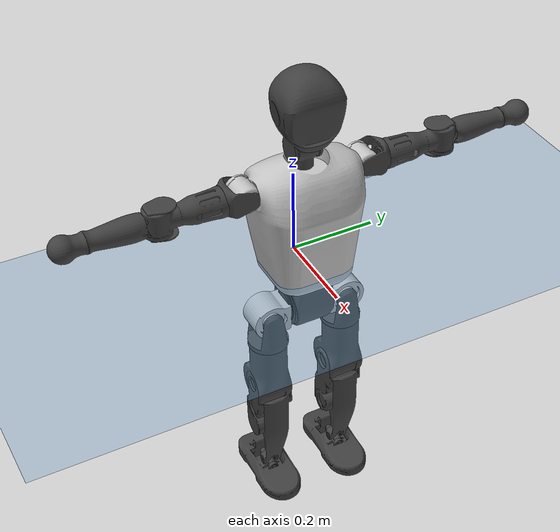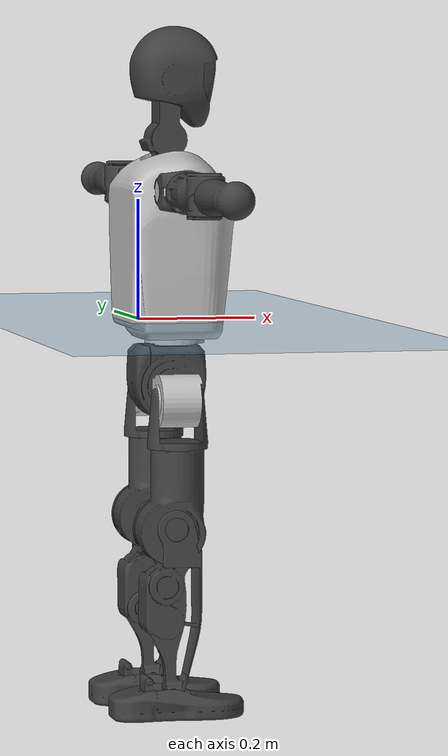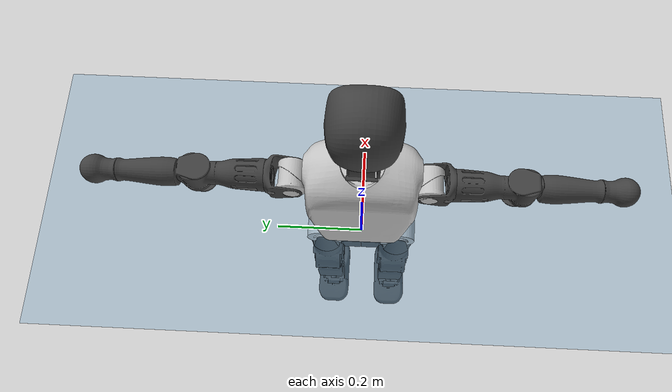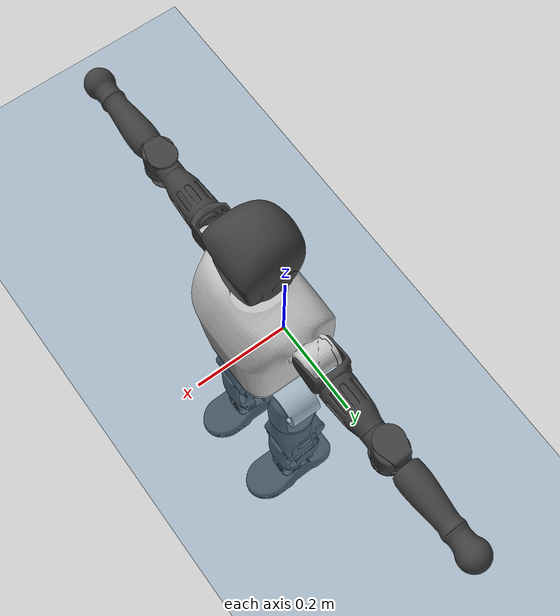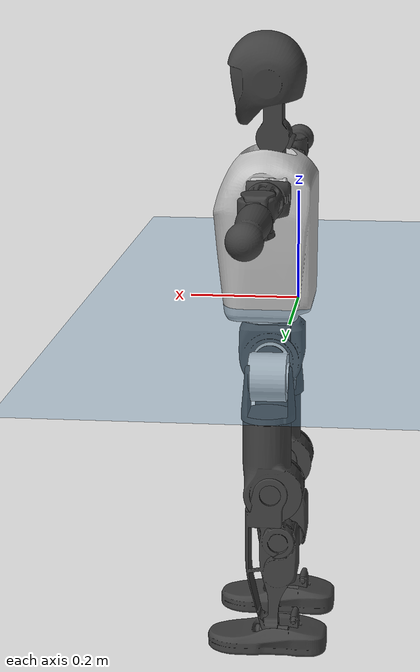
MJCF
<mujoco model="T1">
  <compiler angle="radian" assetdir="assets" balanceinertia="true" inertiafromgeom="false"/>

  <option timestep="0.005" density="1.2" viscosity="2e-05"/>

  <size nkey="1"/>

  <visual>
    <quality shadowsize="8192"/>
    <map shadowclip="0.5"/>
  </visual>

  <default>
    <default class="/">
      <joint armature="0.01" damping="0.01" frictionloss="0.1"/>
      <geom contype="0" conaffinity="0" group="1" solref="-1000 -80"/>
      <site size="0.01 0.005 0.005" group="5"/>
      <general forcelimited="true" biastype="affine" gainprm="25" biasprm="0 -25 -0.6"/>
      <default class="t1">
        <geom rgba="0.25 0.25 0.25 1"/>
        <default class="visual">
          <geom type="mesh" group="2"/>
        </default>
        <default class="collision">
          <geom group="3"/>
        </default>
        <default class="foot">
          <geom size="0.1115 0.05 0.015" type="box" condim="6" group="4" priority="1" solimp="0.015 1 0.015"/>
        </default>
        <default class="reward_collision_sphere">
          <geom group="5" rgba="1 0 0 1"/>
        </default>
      </default>
    </default>
  </default>

  <asset>
    <texture type="skybox" colorspace="auto" name="//unnamed_texture_0" builtin="gradient" rgb1="0.95 0.95 0.95" rgb2="0.95 0.95 0.95" width="100" height="600"/>
    <texture type="2d" colorspace="auto" name="texplane" builtin="checker" rgb1="0.345 0.575 0.748" rgb2="0.345 0.575 0.748" markrgb="1 1 1" width="512" height="512"/>
    <material name="MatPlane" class="/" texture="texplane" texuniform="true" texrepeat="2 2" specular="0.9"/>
    <mesh name="Trunk" class="/" file="Trunk.stl"/>
    <mesh name="H1" class="/" file="H1.stl"/>
    <mesh name="H2" class="/" file="H2.stl"/>
    <mesh name="AL1" class="/" file="AL1.stl"/>
    <mesh name="AL2" class="/" file="AL2.stl"/>
    <mesh name="AL3" class="/" file="AL3.stl"/>
    <mesh name="left_hand_link" class="/" file="left_hand_link.stl"/>
    <mesh name="AR1" class="/" file="AR1.stl"/>
    <mesh name="AR2" class="/" file="AR2.stl"/>
    <mesh name="AR3" class="/" file="AR3.stl"/>
    <mesh name="right_hand_link" class="/" file="right_hand_link.stl"/>
    <mesh name="Waist" class="/" file="Waist.stl"/>
    <mesh name="Hip_Pitch_Left" class="/" file="Hip_Pitch_Left.stl"/>
    <mesh name="Hip_Roll_Left" class="/" file="Hip_Roll_Left.stl"/>
    <mesh name="Hip_Yaw_Left" class="/" file="Hip_Yaw_Left.stl"/>
    <mesh name="Shank_Left" class="/" file="Shank_Left.stl"/>
    <mesh name="Ankle_Cross_Left" class="/" file="Ankle_Cross_Left.stl"/>
    <mesh name="left_foot_link" class="/" file="left_foot_link.stl"/>
    <mesh name="Hip_Pitch_Right" class="/" file="Hip_Pitch_Right.stl"/>
    <mesh name="Hip_Roll_Right" class="/" file="Hip_Roll_Right.stl"/>
    <mesh name="Hip_Yaw_Right" class="/" file="Hip_Yaw_Right.stl"/>
    <mesh name="Shank_Right" class="/" file="Shank_Right.stl"/>
    <mesh name="Ankle_Cross_Right" class="/" file="Ankle_Cross_Right.stl"/>
    <mesh name="right_foot_link" class="/" file="right_foot_link.stl"/>
  </asset>

  <worldbody>
    <geom name="floor" class="/" size="100 100 0.125" type="plane" group="0" material="MatPlane"/>
    <light name="toplight_shadow" class="/" pos="0 0 5" dir="0.0990148 0.0990148 -0.990148" type="directional" ambient="0.04 0.04 0.04" diffuse="0.55 0.55 0.55" specular="0.12 0.12 0.12"/>
    <light name="toplight_fill" class="/" pos="0 0 5" dir="0.0990148 0.0990148 -0.990148" type="directional" castshadow="false" ambient="0.04 0.04 0.04" diffuse="0.3 0.3 0.3" specular="0.08 0.08 0.08"/>
    <body name="trunk" childclass="t1" pos="-0.000376604 0.00106879 0.00263035" quat="1 -0.000253843 -0.000326207 -6.36612e-05">
      <inertial pos="0.0379684 -0.00303281 0.103743" quat="0.999962 -0.000176302 -0.00874178 -0.000204706" mass="7.58514" diaginertia="0.0212292 0.0446755 0.0495285"/>
      <joint name="//unnamed_joint_0" type="free" armature="0" damping="0" frictionloss="0"/>
      <geom name="//unnamed_geom_1" class="visual" rgba="0.76 0.76 0.76 1" mesh="Trunk"/>
      <geom name="//unnamed_geom_2" class="collision" size="0.0654499 0.0872666 0.1309" pos="0.0445324 0 0.117449" type="box"/>
      <geom name="//unnamed_geom_3" class="reward_collision_sphere" size="0.100357" pos="0.0445324 0 0.0978742"/>
      <geom name="//unnamed_geom_4" class="reward_collision_sphere" size="0.01309" pos="0.0445324 0.0762492 0"/>
      <geom name="//unnamed_geom_5" class="reward_collision_sphere" size="0.01309" pos="0.0445324 -0.0762492 0"/>
      <geom name="//unnamed_geom_6" class="reward_collision_sphere" size="0.01309" pos="0.0445324 0.0959843 0.176174"/>
      <geom name="//unnamed_geom_7" class="reward_collision_sphere" size="0.01309" pos="0.0445324 -0.0959843 0.176174"/>
      <site name="imu" pos="-0.0121112 0.0114894 -0.0124466" size="0.00872666"/>
      <camera name="track" pos="0 -1.7941 0" quat="0.707107 0.707107 0 0" mode="trackcom"/>
      <camera name="ego_camera" pos="0.0905492 0 0.411072" quat="-0.5 -0.5 0.5 0.5"/>
      <body name="H1" pos="0.0455546 0.000360955 0.237058" quat="0.999999 -0.000891656 -0.000940287 -0.000212509">
        <inertial pos="-0.00124539 -0.00229412 0.0567221" quat="0.762869 -0.00972592 -0.00174266 0.646477" mass="0.313075" diaginertia="5.42969e-05 0.000134645 0.000139231"/>
        <joint name="AAHead_yaw" pos="0 0 0" axis="0.00675161 -0.00879472 0.999939" range="-1.59134 1.56385" armature="0.00990849" damping="0" frictionloss="0.0895588"/>
        <geom name="//unnamed_geom_8" class="visual" mesh="H1"/>
        <body name="H2" pos="0.0014853 -0.00264498 0.0603537" quat="1 -4.90421e-05 -0.000426111 -0.000818549">
          <inertial pos="0.0047856 -0.000302709 0.0970031" quat="0.988568 0.103009 -0.0779566 -0.0777534" mass="0.42221" diaginertia="0.000461174 0.00112459 0.00159513"/>
          <joint name="Head_pitch" pos="0 0 0" axis="0.0128708 -0.999902 -0.00542942" stiffness="0.00806932" range="-1.2036 0.303907" armature="0.00922255" damping="0" frictionloss="0.091914"/>
          <geom name="//unnamed_geom_9" class="visual" mesh="H2"/>
          <geom name="//unnamed_geom_10" class="collision" size="0.0698133" pos="0.00742206 0 0.107662"/>
          <geom name="//unnamed_geom_11" class="reward_collision_sphere" size="0.0785399" pos="0.0148441 0 0.0978742"/>
        </body>
      </body>
      <body name="AL1" pos="0.0429688 0.0978098 0.21496" quat="0.999999 -2.26679e-06 -0.000678726 0.000968206">
        <inertial pos="-0.000735649 0.0430247 0.000105598" quat="0.505735 0.494506 -0.507334 0.492248" mass="0.348813" diaginertia="0.000316574 0.000741942 0.000259155"/>
        <joint name="Left_Shoulder_Pitch" pos="0 0 0" axis="-0.00465077 0.999984 0.00319341" range="-3.2799 1.23906" armature="0.00864053" damping="0.00662927" frictionloss="0.0763139"/>
        <geom name="//unnamed_geom_12" class="visual" rgba="0.76 0.76 0.76 1" mesh="AL1"/>
        <body name="AL2" pos="-0.00152267 0.0447377 5.33448e-05" quat="1 -2.62777e-06 -3.2096e-06 -9.11446e-05">
          <inertial pos="0.00171221 0.0343724 0.00247873" quat="0.487019 0.51213 -0.488884 0.511398" mass="0.113604" diaginertia="9.3018e-05 0.000200395 0.000167949"/>
          <joint name="Left_Shoulder_Roll" pos="0 0 0" axis="-0.999992 -0.00341806 0.00183769" stiffness="0.00781957" range="-1.5213 1.79044" armature="0.00777837" damping="0" frictionloss="0.0871506"/>
          <geom name="//unnamed_geom_13" class="visual" mesh="AL2"/>
          <body name="AL3" pos="0.00348778 0.0558337 -0.0016493" quat="1 -3.29538e-05 0.000744377 5.95849e-06">
            <inertial pos="0.00231727 0.0763976 -0.000188419" quat="0.701049 0.713095 0.00498921 -0.000904754" mass="0.682724" diaginertia="0.00278257 0.0076246 0.000539359"/>
            <joint name="Left_Elbow_Pitch" pos="0 0 0" axis="-0.00518216 -0.999948 -0.00873004" range="-2.22462 2.32643" armature="0.00788951" damping="0.0109371" frictionloss="0.0753321"/>
            <geom name="//unnamed_geom_14" class="visual" mesh="AL3"/>
            <geom name="//unnamed_geom_15" class="collision" size="0.02618 0.0654499" pos="0 0.0448525 0" quat="0.707105 0.707108 0 0" type="cylinder"/>
            <geom name="//unnamed_geom_16" class="reward_collision_sphere" size="0.031416"/>
            <body name="left_hand_link" pos="-0.00222888 0.13507 0.00272633" quat="1 0.000480271 -3.98822e-05 0.000600132">
              <inertial pos="0.000524919 0.0974153 0.00236004" quat="0.707962 0.70625 0.000161909 0.000508728" mass="0.217914" diaginertia="0.00191566 0.00488953 0.000194707"/>
              <joint name="Left_Elbow_Yaw" pos="0 0 0" axis="0.00825267 -0.000250012 0.999966" range="-2.47559 -0.00916102" armature="0.00992145" damping="0.00889371" frictionloss="0.0772436"/>
              <geom name="//unnamed_geom_17" class="visual" mesh="left_hand_link"/>
              <geom name="//unnamed_geom_18" class="collision" size="0.02618 0.0763583" pos="0 0.116616 0" quat="0.707105 0.707108 0 0" type="cylinder"/>
              <geom name="//unnamed_geom_19" class="reward_collision_sphere" size="0.0436333"/>
              <geom name="//unnamed_geom_20" class="reward_collision_sphere" size="0.0305433" pos="0 0.0986755 0"/>
              <geom name="//unnamed_geom_21" class="reward_collision_sphere" size="0.0305433" pos="0 0.192866 0"/>
            </body>
          </body>
        </body>
      </body>
      <body name="AR1" pos="0.0396086 -0.0915822 0.214411" quat="1 -0.000511116 1.13802e-05 -0.000273808">
        <inertial pos="-0.00326004 -0.0399139 0.00260447" quat="0.499594 0.492353 -0.503899 0.504065" mass="0.360523" diaginertia="0.000300538 0.000732742 0.000270546"/>
        <joint name="Right_Shoulder_Pitch" pos="0 0 0" axis="0.000150709 -0.999999 0.00159035" stiffness="0.00465724" range="-1.22962 3.30338" armature="0.0087504" damping="0.0112214" frictionloss="0.0753678"/>
        <geom name="//unnamed_geom_22" class="visual" rgba="0.76 0.76 0.76 1" mesh="AR1"/>
        <body name="AR2" pos="-0.000273863 -0.0413195 0.000559688" quat="1 6.02852e-07 -3.48681e-06 -5.1021e-06">
          <inertial pos="0.003297 -0.0351265 0.002506" quat="0.511591 0.488111 -0.511649 0.488095" mass="0.107304" diaginertia="8.9468e-05 0.000207376 0.000163009"/>
          <joint name="Right_Shoulder_Roll" pos="0 0 0" axis="-0.999862 -0.00010205 0.0166374" range="-1.697 1.61692" armature="0.00762775" damping="0.0185224" frictionloss="0.0828053"/>
          <geom name="//unnamed_geom_23" class="visual" mesh="AR2"/>
          <body name="AR3" pos="0.000761454 -0.0535501 -0.0021607" quat="1 -6.23525e-05 9.96824e-05 4.28774e-05">
            <inertial pos="-0.000365093 -0.0791427 0.00285248" quat="0.707116 0.706963 -0.0137856 0.000641695" mass="0.677151" diaginertia="0.00297668 0.00720624 0.000579701"/>
            <joint name="Right_Elbow_Pitch" pos="0 0 0" axis="-0.00323042 0.999961 -0.00821829" range="-2.22275 2.21447" armature="0.00876828" damping="0.0215215" frictionloss="0.0881503"/>
            <geom name="//unnamed_geom_24" class="visual" mesh="AR3"/>
            <geom name="//unnamed_geom_25" class="collision" size="0.02618 0.0654499" pos="0 -0.0448525 0" quat="0.707105 0.707108 0 0" type="cylinder"/>
            <geom name="//unnamed_geom_26" class="reward_collision_sphere" size="0.031416"/>
            <body name="right_hand_link" pos="0.000483914 -0.132293 -0.000499015" quat="1 3.97873e-06 -0.000694324 0.000450631">
              <inertial pos="0.000215663 -0.0972974 -0.0020129" quat="0.70799 0.70621 0.00347641 0.00247124" mass="0.214173" diaginertia="0.00181709 0.00470037 0.00018529"/>
              <joint name="Right_Elbow_Yaw" pos="0 0 0" axis="-0.000441874 0.00147791 0.999999" stiffness="0.00246984" range="-0.0216366 2.44653" armature="0.0081614" damping="0" frictionloss="0.0987871"/>
              <geom name="//unnamed_geom_27" class="visual" mesh="right_hand_link"/>
              <geom name="//unnamed_geom_28" class="collision" size="0.02618 0.0763583" pos="0 -0.116616 0" quat="0.707105 0.707108 0 0" type="cylinder"/>
              <geom name="//unnamed_geom_29" class="reward_collision_sphere" size="0.0436333"/>
              <geom name="//unnamed_geom_30" class="reward_collision_sphere" size="0.0305433" pos="0 -0.0986755 0"/>
              <geom name="//unnamed_geom_31" class="reward_collision_sphere" size="0.0305433" pos="0 -0.192866 0"/>
            </body>
          </body>
        </body>
      </body>
      <body name="Waist" pos="0.0478983 -0.000309709 -0.1122" quat="1 0.000137327 0.00037041 0.00041191">
        <inertial pos="-0.000392667 0.0019338 0.00696839" quat="0.983974 -0.00210376 -0.178298 -0.00115003" mass="1.70033" diaginertia="0.00116812 0.00306559 0.00432567"/>
        <joint name="Waist" pos="0 0 0" axis="0.00967152 0.000261991 0.999953" stiffness="0.00766351" range="-1.56128 1.56092" armature="0.00795922" damping="0.0229604" frictionloss="0.084925"/>
        <geom name="//unnamed_geom_32" class="visual" mesh="Waist"/>
        <body name="Hip_Pitch_Left" pos="-0.00145041 0.0971084 0.00234803" quat="0.999999 0.000835218 0.000632557 -8.06882e-05">
          <inertial pos="-0.00227237 -0.00441308 -0.0175619" quat="0.975139 0.221114 0.0144224 0.00209137" mass="0.673414" diaginertia="0.000396519 0.000826741 0.00112612"/>
          <joint name="Left_Hip_Pitch" pos="0 0 0" axis="0.00214335 0.999991 -0.00361338" range="-1.79816 1.57154" armature="0.00738148" damping="0.0147738" frictionloss="0.0970955"/>
          <geom name="//unnamed_geom_33" class="visual" rgba="0.76 0.76 0.76 1" mesh="Hip_Pitch_Left"/>
          <body name="Hip_Roll_Left" pos="0.00291478 -0.00241483 -0.0217736" quat="1 6.79912e-05 -0.000375842 0.000310178">
            <inertial pos="0.00334917 -0.00178027 -0.0549712" quat="0.709075 -0.00347592 -0.00913714 0.705066" mass="0.24761" diaginertia="0.000396673 0.000872393 0.000459273"/>
            <joint name="Left_Hip_Roll" pos="0 0 0" axis="-1 5.4727e-05 0.000785165" range="-1.57147 0.205303" armature="0.00978528" damping="0.0220453" frictionloss="0.0882361"/>
            <geom name="//unnamed_geom_34" class="visual" mesh="Hip_Roll_Left"/>
            <geom name="//unnamed_geom_35" class="reward_collision_sphere" size="0.0479966"/>
            <body name="Hip_Yaw_Left" pos="0.000149732 0.00162437 -0.0785675" quat="1 0.000209392 0.000368608 4.71279e-06">
              <inertial pos="-0.00548446 0.00135485 -0.0848552" quat="0.696658 -0.033864 -0.0315318 0.71591" mass="1.4778" diaginertia="0.00594545 0.0150773 0.00236106"/>
              <joint name="Left_Hip_Yaw" pos="0 0 0" axis="0.000552023 -0.000450756 -1" stiffness="0.00394709" range="-0.992882 1.00388" armature="0.00874382" damping="0.0001835" frictionloss="0.098622"/>
              <geom name="//unnamed_geom_36" class="visual" mesh="Hip_Yaw_Left"/>
              <geom name="//unnamed_geom_37" class="collision" size="0.0436333 0.0698133" type="cylinder"/>
              <body name="Shank_Left" pos="-0.00919896 -0.00199066 -0.134149" quat="0.999999 0.00121998 0.000812403 0.00014983">
                <inertial pos="-0.00386695 -0.0019658 -0.120556" quat="0.998249 -0.00612636 -0.0196815 0.055449" mass="1.16938" diaginertia="0.00788987 0.0207355 0.00168257"/>
                <joint name="Left_Knee_Pitch" pos="0 0 0" axis="-0.00684941 0.999903 -0.0121219" range="-0.0103544 2.28514" armature="0.0100381" damping="0" frictionloss="0.08685"/>
                <geom name="//unnamed_geom_38" class="visual" mesh="Shank_Left"/>
                <geom name="//unnamed_geom_39" class="collision" size="0.0436333 0.0654499" pos="0 0 -0.117449" type="cylinder"/>
                <geom name="//unnamed_geom_40" class="reward_collision_sphere" size="0.0567233"/>
                <body name="Ankle_Cross_Left" pos="0.00203486 -0.0031876 -0.274015" quat="1 -0.000536 -0.000631375 -0.000321285">
                  <inertial pos="-0.00160125 -0.000388916 -0.00745797" quat="0.441283 0.56207 0.547382 0.435567" mass="0.0468878" diaginertia="6.73862e-06 1.48279e-05 1.01416e-05"/>
                  <joint name="Left_Ankle_Pitch" pos="0 0 0" axis="0.00192871 0.999998 0.000736973" stiffness="0.0090428" range="-0.914589 0.397334" armature="0.00983625" damping="0.00268943" frictionloss="0.0976984"/>
                  <geom name="//unnamed_geom_41" class="visual" mesh="Ankle_Cross_Left"/>
                  <body name="left_foot_link" pos="-0.00283927 -0.00193206 -0.01454" quat="0.999999 0.000474531 0.0008679 0.000627127">
                    <inertial pos="-0.000105028 -0.000272056 -0.00978102" quat="-0.011564 0.626212 0.00389756 0.779557" mass="0.466535" diaginertia="0.000607647 0.00141304 0.00205082"/>
                    <joint name="Left_Ankle_Roll" pos="0 0 0" axis="-0.99993 0.00816678 -0.00861493" stiffness="0.0079653" range="-0.434305 0.484203" armature="0.00876141" damping="0.00956599" frictionloss="0.0941821"/>
                    <geom name="//unnamed_geom_42" class="visual" mesh="left_foot_link"/>
                    <geom name="left_foot" class="foot" size="0.102376 0.0406716 0.0138172" pos="0.00742206 0 -0.0146811"/>
                    <geom name="//unnamed_geom_44" class="reward_collision_sphere" size="0.0453786" pos="0.00742206 0 -0.0146811"/>
                    <geom name="//unnamed_geom_45" class="reward_collision_sphere" size="0.02618" pos="0.0705096 -0.0206321 -0.0146811"/>
                    <geom name="//unnamed_geom_46" class="reward_collision_sphere" size="0.02618" pos="-0.0519544 -0.0206321 -0.0146811"/>
                    <site name="left_foot" class="foot" pos="0.00742206 0 -0.0146811" size="0.00872666"/>
                  </body>
                </body>
              </body>
            </body>
          </body>
        </body>
        <body name="Hip_Pitch_Right" pos="-0.00116479 -0.095213 -0.000638349" quat="1 0.000566015 0.000553597 9.10064e-05">
          <inertial pos="-0.000702974 0.00679748 -0.0191726" quat="0.975776 -0.218454 0.0108838 -0.00454266" mass="0.651819" diaginertia="0.000395619 0.000849188 0.00108439"/>
          <joint name="Right_Hip_Pitch" pos="0 0 0" axis="-0.00293865 -0.999991 0.00313135" range="-1.58063 1.75301" armature="0.00917285" damping="0.00917478" frictionloss="0.0896112"/>
          <geom name="//unnamed_geom_47" class="visual" rgba="0.76 0.76 0.76 1" mesh="Hip_Pitch_Right"/>
          <body name="Hip_Roll_Right" pos="0.00222594 -4.21328e-05 -0.0217573" quat="1 3.29809e-05 0.000148021 4.41326e-05">
            <inertial pos="0.00181822 0.00212589 -0.0523673" quat="0.710044 -0.0191458 -0.00422856 0.703884" mass="0.245556" diaginertia="0.000389759 0.000872006 0.000444169"/>
            <joint name="Right_Hip_Roll" pos="0 0 0" axis="-0.999966 0.00820548 0.000300254" stiffness="0.00847296" range="-0.181594 1.56668" armature="0.00763988" damping="0.00797365" frictionloss="0.0891813"/>
            <geom name="//unnamed_geom_48" class="visual" mesh="Hip_Roll_Right"/>
            <geom name="//unnamed_geom_49" class="reward_collision_sphere" size="0.0479966"/>
            <body name="Hip_Yaw_Right" pos="-0.00266408 0.00124667 -0.0798996" quat="1 -0.000505712 -0.000163282 0.000200372">
              <inertial pos="-0.00807834 -0.00013547 -0.089442" quat="0.719795 -0.0263012 -0.0440294 0.692289" mass="1.47819" diaginertia="0.00574651 0.0143811 0.0022769"/>
              <joint name="Right_Hip_Yaw" pos="0 0 0" axis="1.61261e-05 6.82069e-05 -1" range="-0.950036 0.955296" armature="0.00833111" damping="0.00221295" frictionloss="0.0880388"/>
              <geom name="//unnamed_geom_50" class="visual" mesh="Hip_Yaw_Right"/>
              <geom name="//unnamed_geom_51" class="collision" size="0.0436333 0.0698133" type="cylinder"/>
              <body name="Shank_Right" pos="-0.009256 0.00201391 -0.128183" quat="1 -0.000192177 -5.17736e-05 -4.00251e-05">
                <inertial pos="-0.00260514 -0.000583625 -0.121628" quat="0.99964 -0.000180034 -0.021003 -0.0167135" mass="1.10872" diaginertia="0.0076302 0.0202656 0.00171042"/>
                <joint name="Right_Knee_Pitch" pos="0 0 0" axis="-0.00613594 -0.999981 -0.000682554" range="-2.34331 -0.0186511" armature="0.00975295" damping="0" frictionloss="0.0995762"/>
                <geom name="//unnamed_geom_52" class="visual" mesh="Shank_Right"/>
                <geom name="//unnamed_geom_53" class="collision" size="0.0436333 0.0654499" pos="0 0 -0.117449" type="cylinder"/>
                <geom name="//unnamed_geom_54" class="reward_collision_sphere" size="0.0567233"/>
                <body name="Ankle_Cross_Right" pos="-0.00170948 -0.0027763 -0.273184" quat="0.999999 -0.000934481 0.000790684 0.000154633">
                  <inertial pos="-0.00210585 -0.000104133 -0.00677734" quat="0.442817 0.550643 0.550735 0.444293" mass="0.0482038" diaginertia="6.27314e-06 1.4789e-05 1.00218e-05"/>
                  <joint name="Right_Ankle_Pitch" pos="0 0 0" axis="-0.00138739 -0.999999 -0.000413052" range="-0.387793 0.913643" armature="0.00902135" damping="0.0215344" frictionloss="0.0865296"/>
                  <geom name="//unnamed_geom_55" class="visual" mesh="Ankle_Cross_Right"/>
                  <body name="right_foot_link" pos="0.000243194 -0.00129036 -0.0137664" quat="0.999999 0.000109969 -0.0010288 0.000964173">
                    <inertial pos="-0.00290144 0.000711908 -0.00869462" quat="0.000713449 0.621338 0.00142219 0.783541" mass="0.455449" diaginertia="0.000590943 0.00134255 0.00195045"/>
                    <joint name="Right_Ankle_Roll" pos="0 0 0" axis="-0.999997 -0.00142649 -0.00195029" stiffness="0.00617389" range="-0.393158 0.401238" armature="0.00890248" damping="0.00267643" frictionloss="0.0852541"/>
                    <geom name="//unnamed_geom_56" class="visual" mesh="right_foot_link"/>
                    <geom name="right_foot" class="foot" size="0.0983369 0.0423436 0.0136265" pos="0.00742206 0 -0.0146811"/>
                    <geom name="//unnamed_geom_58" class="reward_collision_sphere" size="0.0349066"/>
                    <geom name="//unnamed_geom_59" class="reward_collision_sphere" size="0.02618" pos="0.00742206 0 -0.0146811"/>
                    <geom name="//unnamed_geom_60" class="reward_collision_sphere" size="0.02618" pos="0.0705096 0.0206321 -0.0146811"/>
                    <geom name="//unnamed_geom_61" class="reward_collision_sphere" size="0.02618" pos="-0.0519544 0.0206321 -0.0146811"/>
                    <site name="right_foot" class="foot" pos="0.00742206 0 -0.0146811" size="0.00872666"/>
                  </body>
                </body>
              </body>
            </body>
          </body>
        </body>
      </body>
    </body>
  </worldbody>

  <contact>
    <pair class="/" geom1="floor" geom2="left_foot" name="//unnamed_contact_0"/>
    <pair class="/" geom1="floor" geom2="right_foot" name="//unnamed_contact_1"/>
  </contact>

  <actuator>
    <general name="AAHead_yaw" class="/" joint="AAHead_yaw" forcerange="-6.03986 6.03986" gainprm="20.4965" biasprm="0 -20.4965 -0.485973"/>
    <general name="Head_pitch" class="/" joint="Head_pitch" forcerange="-6.03425 6.03425" gainprm="20.4965" biasprm="0 -20.4965 -0.485973"/>
    <general name="Left_Shoulder_Pitch" class="/" joint="Left_Shoulder_Pitch" forcerange="-15.0681 15.0681" gainprm="20.4965" biasprm="0 -20.4965 -0.485973"/>
    <general name="Left_Shoulder_Roll" class="/" joint="Left_Shoulder_Roll" forcerange="-14.3876 14.3876" gainprm="20.4965" biasprm="0 -20.4965 -0.485973"/>
    <general name="Left_Elbow_Pitch" class="/" joint="Left_Elbow_Pitch" forcerange="-14.4204 14.4204" gainprm="20.4965" biasprm="0 -20.4965 -0.485973"/>
    <general name="Left_Elbow_Yaw" class="/" joint="Left_Elbow_Yaw" forcerange="-17.3342 17.3342" gainprm="20.4965" biasprm="0 -20.4965 -0.485973"/>
    <general name="Right_Shoulder_Pitch" class="/" joint="Right_Shoulder_Pitch" forcerange="-17.2697 17.2697" gainprm="20.4965" biasprm="0 -20.4965 -0.485973"/>
    <general name="Right_Shoulder_Roll" class="/" joint="Right_Shoulder_Roll" forcerange="-14.9925 14.9925" gainprm="20.4965" biasprm="0 -20.4965 -0.485973"/>
    <general name="Right_Elbow_Pitch" class="/" joint="Right_Elbow_Pitch" forcerange="-15.6599 15.6599" gainprm="20.4965" biasprm="0 -20.4965 -0.485973"/>
    <general name="Right_Elbow_Yaw" class="/" joint="Right_Elbow_Yaw" forcerange="-15.7445 15.7445" gainprm="20.4965" biasprm="0 -20.4965 -0.485973"/>
    <general name="Waist" class="/" joint="Waist" forcerange="-26.5644 26.5644" gainprm="20.4965" biasprm="0 -20.4965 -0.485973"/>
    <general name="Left_Hip_Pitch" class="/" joint="Left_Hip_Pitch" forcerange="-37.5058 37.5058" gainprm="20.4965" biasprm="0 -20.4965 -0.485973"/>
    <general name="Left_Hip_Roll" class="/" joint="Left_Hip_Roll" forcerange="-28.6933 28.6933" gainprm="20.4965" biasprm="0 -20.4965 -0.485973"/>
    <general name="Left_Hip_Yaw" class="/" joint="Left_Hip_Yaw" forcerange="-24.0254 24.0254" gainprm="20.4965" biasprm="0 -20.4965 -0.485973"/>
    <general name="Left_Knee_Pitch" class="/" joint="Left_Knee_Pitch" forcerange="-47.8553 47.8553" gainprm="20.4965" biasprm="0 -20.4965 -0.485973"/>
    <general name="Left_Ankle_Pitch" class="/" joint="Left_Ankle_Pitch" forcerange="-17.8121 17.8121" gainprm="20.4965" biasprm="0 -20.4965 -0.485973"/>
    <general name="Left_Ankle_Roll" class="/" joint="Left_Ankle_Roll" forcerange="-13.1829 13.1829" gainprm="20.4965" biasprm="0 -20.4965 -0.485973"/>
    <general name="Right_Hip_Pitch" class="/" joint="Right_Hip_Pitch" forcerange="-39.8364 39.8364" gainprm="20.4965" biasprm="0 -20.4965 -0.485973"/>
    <general name="Right_Hip_Roll" class="/" joint="Right_Hip_Roll" forcerange="-25.6828 25.6828" gainprm="20.4965" biasprm="0 -20.4965 -0.485973"/>
    <general name="Right_Hip_Yaw" class="/" joint="Right_Hip_Yaw" forcerange="-28.2178 28.2178" gainprm="20.4965" biasprm="0 -20.4965 -0.485973"/>
    <general name="Right_Knee_Pitch" class="/" joint="Right_Knee_Pitch" forcerange="-52.975 52.975" gainprm="20.4965" biasprm="0 -20.4965 -0.485973"/>
    <general name="Right_Ankle_Pitch" class="/" joint="Right_Ankle_Pitch" forcerange="-15.6565 15.6565" gainprm="20.4965" biasprm="0 -20.4965 -0.485973"/>
    <general name="Right_Ankle_Roll" class="/" joint="Right_Ankle_Roll" forcerange="-13.0314 13.0314" gainprm="20.4965" biasprm="0 -20.4965 -0.485973"/>
  </actuator>

  <sensor>
    <gyro site="imu" name="imu_angular_velocity"/>
    <velocimeter site="imu" name="imu_linear_velocity"/>
    <framelinvel objtype="site" objname="left_foot" name="left_foot_global_linear_velocity"/>
    <framelinvel objtype="site" objname="right_foot" name="right_foot_global_linear_velocity"/>
  </sensor>

  <keyframe>
    <key name="home" qpos="0 0 0.6385 1 0 0 0 0 0 0 1.4 0 -0.4 0 -1.4 0 0.4 0 -0.4 0 0 0.8 -0.4 0 0.4 0 0 -0.8 0.4 0"/>
  </keyframe>
</mujoco>
